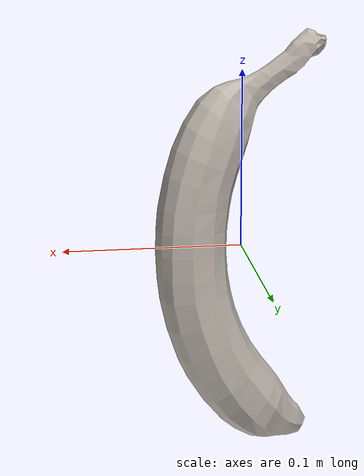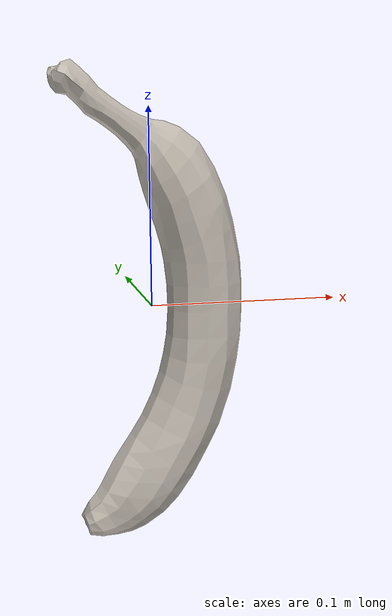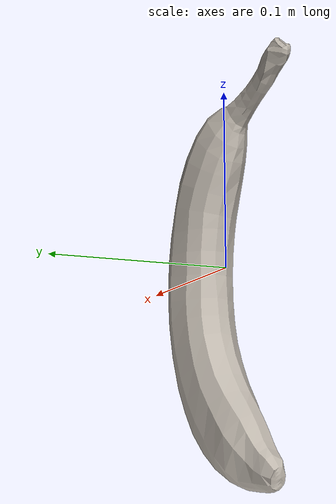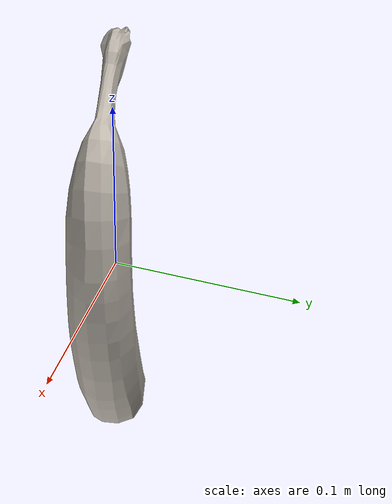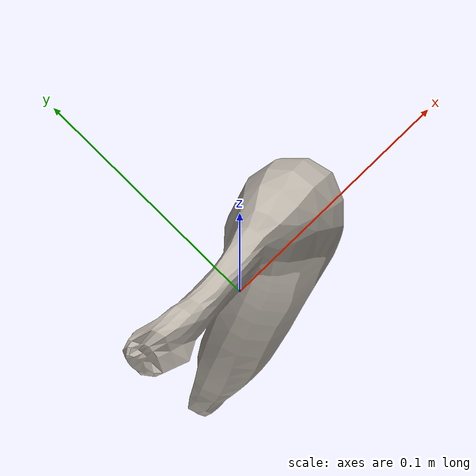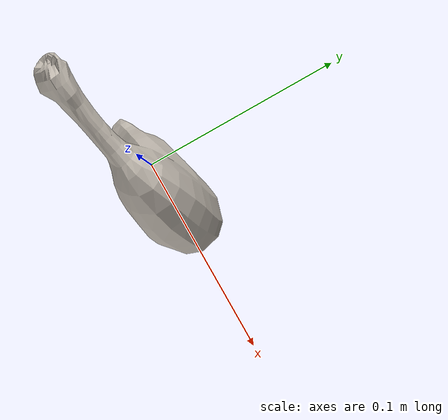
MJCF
<mujoco model="banana_54a13e43">
  <compiler angle="radian"/>
  <asset>
    <texture type="2d" name="banana_54a13e43_tex" file="banana_54a13e43_visual_0.png"/>
    <material name="banana_54a13e43_mat" texture="banana_54a13e43_tex"/>
    <mesh name="banana_54a13e43_visual" content_type="model/obj" file="banana_54a13e43_visual.obj" scale="-1 1 1.36431"/>
    <mesh name="banana_54a13e43_c0" content_type="model/obj" file="banana_54a13e43_c0.obj" scale="-1 1 1.36431"/>
    <mesh name="banana_54a13e43_c1" content_type="model/obj" file="banana_54a13e43_c1.obj" scale="-1 1 1.36431"/>
    <mesh name="banana_54a13e43_c2" content_type="model/obj" file="banana_54a13e43_c2.obj" scale="-1 1 1.36431"/>
    <mesh name="banana_54a13e43_c3" content_type="model/obj" file="banana_54a13e43_c3.obj" scale="-1 1 1.36431"/>
  </asset>
  <worldbody>
    <body name="banana_54a13e43">
      <freejoint/>
      <geom name="banana_54a13e43_visual" type="mesh" mesh="banana_54a13e43_visual" mass="1e-8" contype="0" conaffinity="0" group="2" material="banana_54a13e43_mat"/>
      <geom name="banana_54a13e43_c0" type="mesh" mesh="banana_54a13e43_c0" group="3" density="600.781" friction="0.9 0.05 0.005" condim="4" rgba="0.4 0.5 0.9 0.35"/>
      <geom name="banana_54a13e43_c1" type="mesh" mesh="banana_54a13e43_c1" group="3" density="600.781" friction="0.9 0.05 0.005" condim="4" rgba="0.4 0.5 0.9 0.35"/>
      <geom name="banana_54a13e43_c2" type="mesh" mesh="banana_54a13e43_c2" group="3" density="600.781" friction="0.9 0.05 0.005" condim="4" rgba="0.4 0.5 0.9 0.35"/>
      <geom name="banana_54a13e43_c3" type="mesh" mesh="banana_54a13e43_c3" group="3" density="600.781" friction="0.9 0.05 0.005" condim="4" rgba="0.4 0.5 0.9 0.35"/>
    </body>
  </worldbody>
</mujoco>
